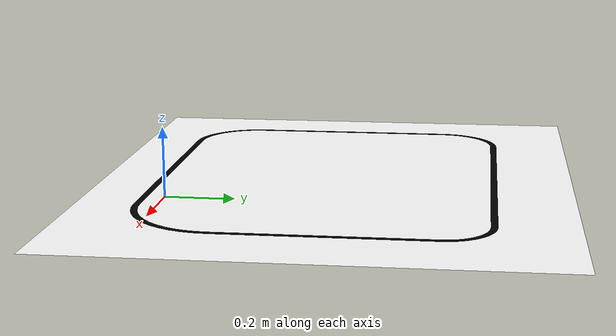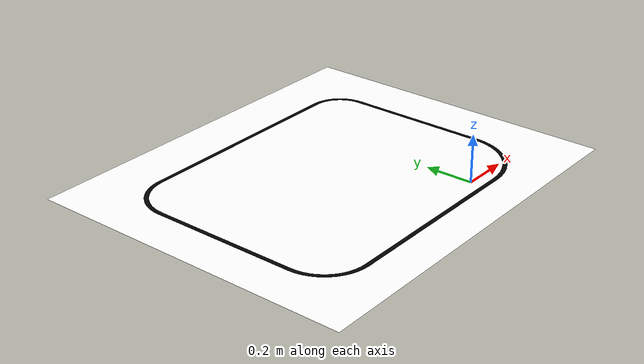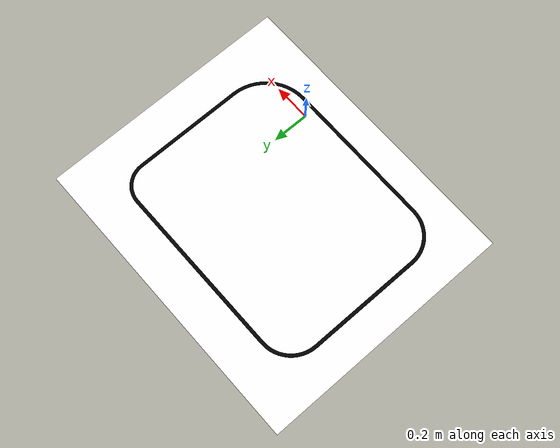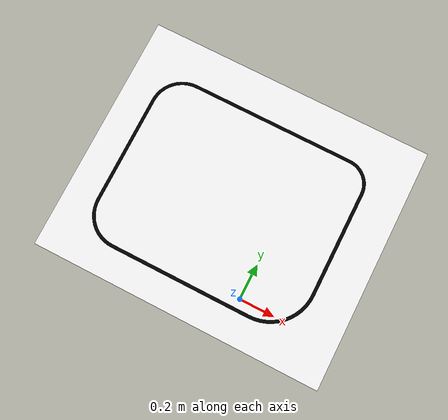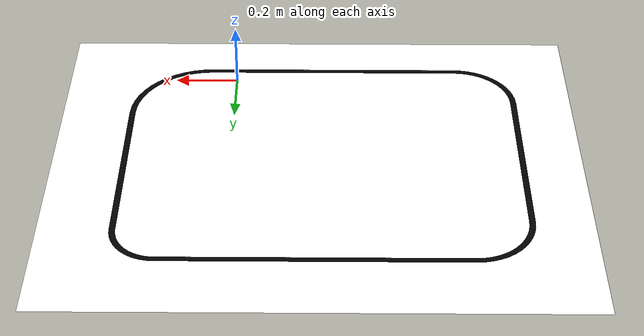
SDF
<?xml version="1.0"?>
<sdf version="1.3">
  <model name="circuitoMbot">
    <static>true</static>
    <link name="link">
      <collision name="collision">
        <geometry>
          <plane>
            <normal>0 0 1</normal>
            <size>100 100</size>
        </plane>
      </geometry>
        <surface>
          <friction>
            <ode>
              <mu>100</mu>
              <mu2>50</mu2>
          </ode>
        </friction>
      </surface>
    </collision>
    <visual name="visual">
        <cast_shadows>false</cast_shadows>
        <geometry>
           <mesh>
		<uri>model://circuitoMBOT/meshes/circuitoMbot.dae</uri>
	   </mesh>
      </geometry>
    </visual>
  </link>
</model>
</sdf>
